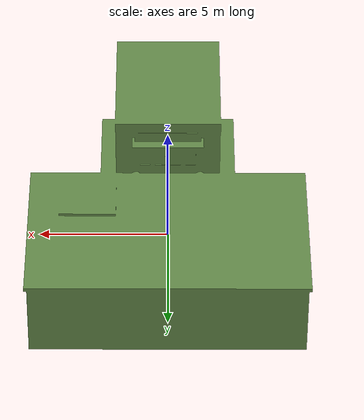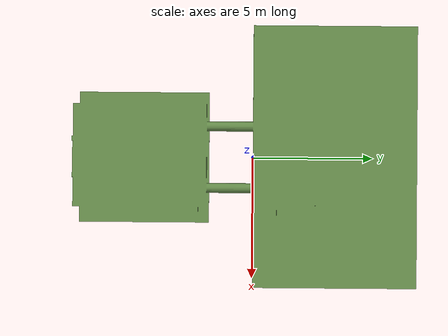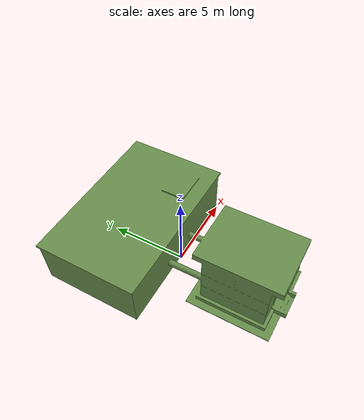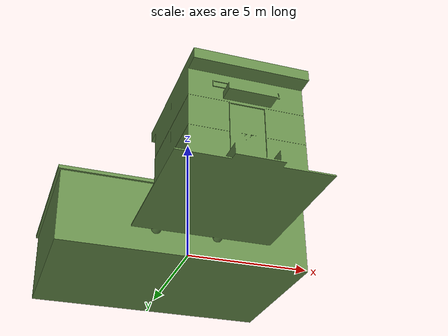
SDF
<?xml version="1.0" ?>
<sdf version="1.8">
  <model name="Electrical_Shack">
    <static>true</static>
    <link name="link">
      <collision name="collision">
        <geometry>
          <mesh>
            <uri>model://Electrical_Shack/Meshes/Electrical_Shack.stl</uri>
            <scale>0.001 0.001 0.001</scale>
          </mesh>
        </geometry>
      </collision>

      <visual name="visual">
        <geometry>
          <mesh>
            <uri>model://Electrical_Shack/Meshes/Electrical_Shack.stl</uri>
            <scale>0.001 0.001 0.001</scale>
          </mesh>
        </geometry>
        <material>
          <diffuse>0.4 0.553 0.294 1</diffuse>
        </material>
      </visual>
    </link>
  </model>
</sdf>
